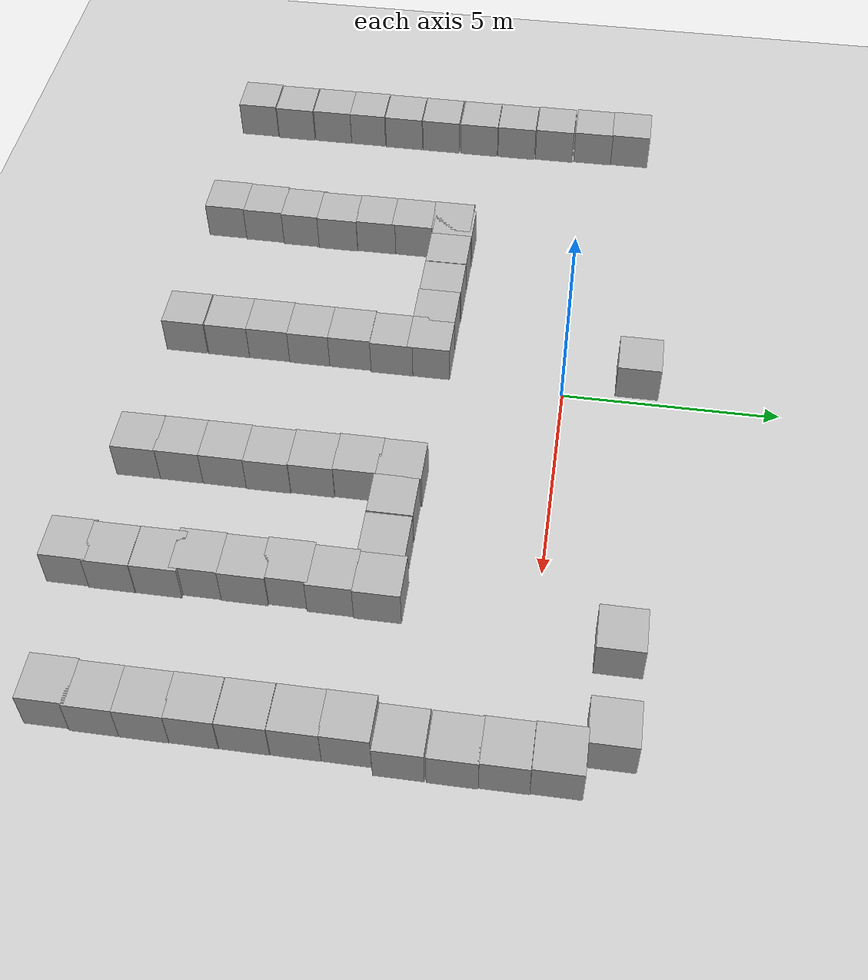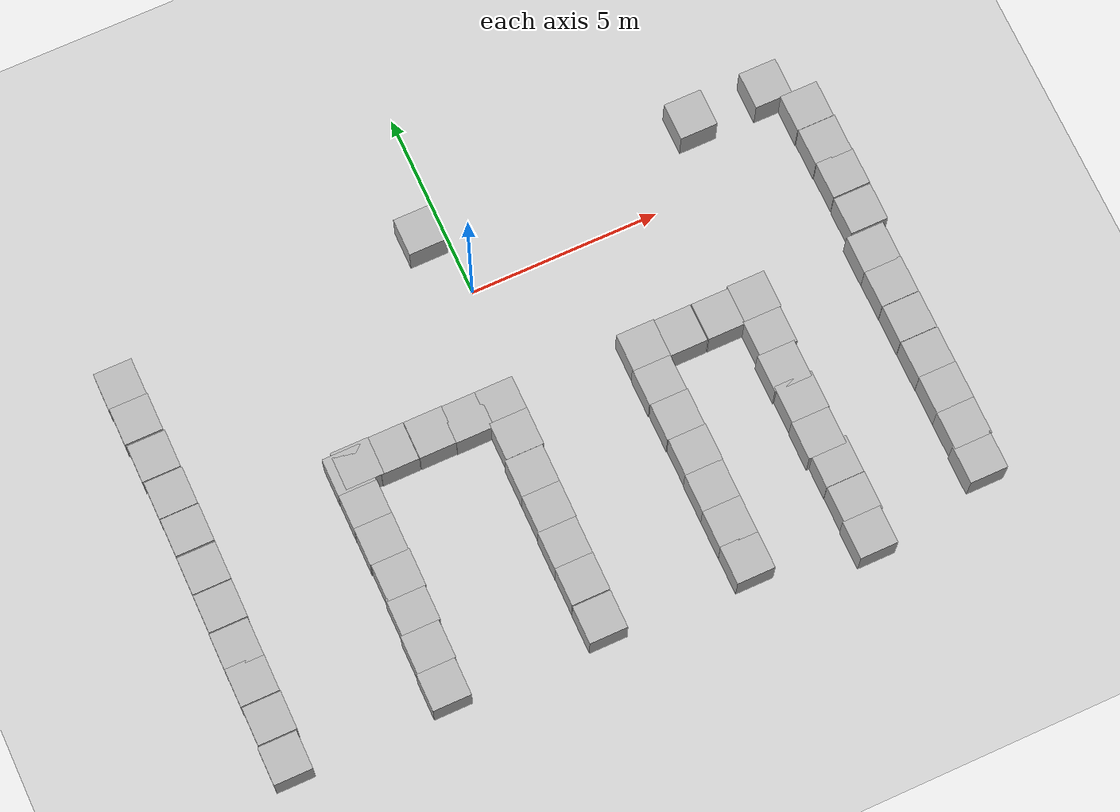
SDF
<sdf version="1.9">
 <world name="empty">
  <model name="ground_plane">
   <static>true</static>
   <link name="link">
    <collision name="collision">
     <geometry><plane><normal>0 0 1</normal><size>100 100</size></plane></geometry>
    </collision>
    <visual name="visual">
     <geometry><plane><normal>0 0 1</normal><size>100 100</size></plane></geometry>
     <material>
      <ambient>0.8 0.8 0.8 1</ambient>
      <diffuse>0.8 0.8 0.8 1</diffuse>
      <specular>0.8 0.8 0.8 1</specular>
     </material>
    </visual>
    <inertial>
     <mass>1</mass>
     <inertia><ixx>1</ixx><ixy>0</ixy><ixz>0</ixz><iyy>1</iyy><iyz>0</iyz><izz>1</izz></inertia>
    </inertial>
   </link>
  </model>
  <model name="box">
   <pose>-0.628622 -3.17576 0.5 0 -0 0</pose>
   <link name="box_link">
    <inertial>
     <inertia><ixx>0.16666</ixx><ixy>0</ixy><ixz>0</ixz><iyy>0.16666</iyy><iyz>0</iyz><izz>0.16666</izz></inertia>
     <mass>1</mass>
    </inertial>
    <collision name="box_collision"><geometry><box><size>1 1 1</size></box></geometry></collision>
    <visual name="box_visual">
     <geometry><box><size>1 1 1</size></box></geometry>
     <material>
      <ambient>0.3 0.3 0.3 1</ambient>
      <diffuse>0.7 0.7 0.7 1</diffuse>
      <specular>1 1 1 1</specular>
     </material>
    </visual>
   </link>
   <static>false</static>
  </model>
  <model name="box_0">
   <pose>-1.54573 -3.17539 0.5 0 -0 0</pose>
   <link name="box_link">
    <inertial>
     <inertia><ixx>0.16666</ixx><ixy>0</ixy><ixz>0</ixz><iyy>0.16666</iyy><iyz>0</iyz><izz>0.16666</izz></inertia>
     <mass>1</mass>
    </inertial>
    <collision name="box_collision"><geometry><box><size>1 1 1</size></box></geometry></collision>
    <visual name="box_visual">
     <geometry><box><size>1 1 1</size></box></geometry>
     <material>
      <ambient>0.3 0.3 0.3 1</ambient>
      <diffuse>0.7 0.7 0.7 1</diffuse>
      <specular>1 1 1 1</specular>
     </material>
    </visual>
   </link>
   <static>false</static>
  </model>
  <model name="box_1">
   <pose>-2.50675 -3.16277 0.5 0 -0 0</pose>
   <link name="box_link">
    <inertial>
     <inertia><ixx>0.16666</ixx><ixy>0</ixy><ixz>0</ixz><iyy>0.16666</iyy><iyz>0</iyz><izz>0.16666</izz></inertia>
     <mass>1</mass>
    </inertial>
    <collision name="box_collision"><geometry><box><size>1 1 1</size></box></geometry></collision>
    <visual name="box_visual">
     <geometry><box><size>1 1 1</size></box></geometry>
     <material>
      <ambient>0.3 0.3 0.3 1</ambient>
      <diffuse>0.7 0.7 0.7 1</diffuse>
      <specular>1 1 1 1</specular>
     </material>
    </visual>
   </link>
   <static>false</static>
  </model>
  <model name="box_2">
   <pose>-3.51964 -3.15896 0.5 0 -0 0</pose>
   <link name="box_link">
    <inertial>
     <inertia><ixx>0.16666</ixx><ixy>0</ixy><ixz>0</ixz><iyy>0.16666</iyy><iyz>0</iyz><izz>0.16666</izz></inertia>
     <mass>1</mass>
    </inertial>
    <collision name="box_collision"><geometry><box><size>1 1 1</size></box></geometry></collision>
    <visual name="box_visual">
     <geometry><box><size>1 1 1</size></box></geometry>
     <material>
      <ambient>0.3 0.3 0.3 1</ambient>
      <diffuse>0.7 0.7 0.7 1</diffuse>
      <specular>1 1 1 1</specular>
     </material>
    </visual>
   </link>
   <static>false</static>
  </model>
  <model name="box_3">
   <pose>-4.44088 -3.14907 0.5 0 -0 0</pose>
   <link name="box_link">
    <inertial>
     <inertia><ixx>0.16666</ixx><ixy>0</ixy><ixz>0</ixz><iyy>0.16666</iyy><iyz>0</iyz><izz>0.16666</izz></inertia>
     <mass>1</mass>
    </inertial>
    <collision name="box_collision"><geometry><box><size>1 1 1</size></box></geometry></collision>
    <visual name="box_visual">
     <geometry><box><size>1 1 1</size></box></geometry>
     <material>
      <ambient>0.3 0.3 0.3 1</ambient>
      <diffuse>0.7 0.7 0.7 1</diffuse>
      <specular>1 1 1 1</specular>
     </material>
    </visual>
   </link>
   <static>false</static>
  </model>
  <model name="box_7">
   <pose>-0.640154 1.71751 0.5 0 -0 0</pose>
   <link name="box_link">
    <inertial>
     <inertia><ixx>0.16666</ixx><ixy>0</ixy><ixz>0</ixz><iyy>0.16666</iyy><iyz>0</iyz><izz>0.16666</izz></inertia>
     <mass>1</mass>
    </inertial>
    <collision name="box_collision"><geometry><box><size>1 1 1</size></box></geometry></collision>
    <visual name="box_visual">
     <geometry><box><size>1 1 1</size></box></geometry>
     <material>
      <ambient>0.3 0.3 0.3 1</ambient>
      <diffuse>0.7 0.7 0.7 1</diffuse>
      <specular>1 1 1 1</specular>
     </material>
    </visual>
   </link>
   <static>false</static>
  </model>
  <model name="box_8">
   <pose>-0.624925 -4.05306 0.5 0 -0 0</pose>
   <link name="box_link">
    <inertial>
     <inertia><ixx>0.16666</ixx><ixy>0</ixy><ixz>0</ixz><iyy>0.16666</iyy><iyz>0</iyz><izz>0.16666</izz></inertia>
     <mass>1</mass>
    </inertial>
    <collision name="box_collision"><geometry><box><size>1 1 1</size></box></geometry></collision>
    <visual name="box_visual">
     <geometry><box><size>1 1 1</size></box></geometry>
     <material>
      <ambient>0.3 0.3 0.3 1</ambient>
      <diffuse>0.7 0.7 0.7 1</diffuse>
      <specular>1 1 1 1</specular>
     </material>
    </visual>
   </link>
   <static>false</static>
  </model>
  <model name="box_9">
   <pose>-0.666125 -5.05588 0.5 0 -0 0</pose>
   <link name="box_link">
    <inertial>
     <inertia><ixx>0.16666</ixx><ixy>0</ixy><ixz>0</ixz><iyy>0.16666</iyy><iyz>0</iyz><izz>0.16666</izz></inertia>
     <mass>1</mass>
    </inertial>
    <collision name="box_collision"><geometry><box><size>1 1 1</size></box></geometry></collision>
    <visual name="box_visual">
     <geometry><box><size>1 1 1</size></box></geometry>
     <material>
      <ambient>0.3 0.3 0.3 1</ambient>
      <diffuse>0.7 0.7 0.7 1</diffuse>
      <specular>1 1 1 1</specular>
     </material>
    </visual>
   </link>
   <static>false</static>
  </model>
  <model name="box_10">
   <pose>-0.666125 -6.02587 0.5 0 -0 0</pose>
   <link name="box_link">
    <inertial>
     <inertia><ixx>0.16666</ixx><ixy>0</ixy><ixz>0</ixz><iyy>0.16666</iyy><iyz>0</iyz><izz>0.16666</izz></inertia>
     <mass>1</mass>
    </inertial>
    <collision name="box_collision"><geometry><box><size>1 1 1</size></box></geometry></collision>
    <visual name="box_visual">
     <geometry><box><size>1 1 1</size></box></geometry>
     <material>
      <ambient>0.3 0.3 0.3 1</ambient>
      <diffuse>0.7 0.7 0.7 1</diffuse>
      <specular>1 1 1 1</specular>
     </material>
    </visual>
   </link>
   <static>false</static>
  </model>
  <model name="box_11">
   <pose>-0.682233 -7.0253 0.5 0 -0 0</pose>
   <link name="box_link">
    <inertial>
     <inertia><ixx>0.16666</ixx><ixy>0</ixy><ixz>0</ixz><iyy>0.16666</iyy><iyz>0</iyz><izz>0.16666</izz></inertia>
     <mass>1</mass>
    </inertial>
    <collision name="box_collision"><geometry><box><size>1 1 1</size></box></geometry></collision>
    <visual name="box_visual">
     <geometry><box><size>1 1 1</size></box></geometry>
     <material>
      <ambient>0.3 0.3 0.3 1</ambient>
      <diffuse>0.7 0.7 0.7 1</diffuse>
      <specular>1 1 1 1</specular>
     </material>
    </visual>
   </link>
   <static>false</static>
  </model>
  <model name="box_12">
   <pose>-0.678292 -8.00642 0.500001 0 -0 0</pose>
   <link name="box_link">
    <inertial>
     <inertia><ixx>0.16666</ixx><ixy>0</ixy><ixz>0</ixz><iyy>0.16666</iyy><iyz>0</iyz><izz>0.16666</izz></inertia>
     <mass>1</mass>
    </inertial>
    <collision name="box_collision"><geometry><box><size>1 1 1</size></box></geometry></collision>
    <visual name="box_visual">
     <geometry><box><size>1 1 1</size></box></geometry>
     <material>
      <ambient>0.3 0.3 0.3 1</ambient>
      <diffuse>0.7 0.7 0.7 1</diffuse>
      <specular>1 1 1 1</specular>
     </material>
    </visual>
   </link>
   <static>false</static>
  </model>
  <model name="box_13">
   <pose>-0.682523 -9.03062 0.5 0 -0 0</pose>
   <link name="box_link">
    <inertial>
     <inertia><ixx>0.16666</ixx><ixy>0</ixy><ixz>0</ixz><iyy>0.16666</iyy><iyz>0</iyz><izz>0.16666</izz></inertia>
     <mass>1</mass>
    </inertial>
    <collision name="box_collision"><geometry><box><size>1 1 1</size></box></geometry></collision>
    <visual name="box_visual">
     <geometry><box><size>1 1 1</size></box></geometry>
     <material>
      <ambient>0.3 0.3 0.3 1</ambient>
      <diffuse>0.7 0.7 0.7 1</diffuse>
      <specular>1 1 1 1</specular>
     </material>
    </visual>
   </link>
   <static>false</static>
  </model>
  <model name="box_20">
   <pose>3.11918 -3.27527 0.5 0 -0 0</pose>
   <link name="box_link">
    <inertial>
     <inertia><ixx>0.16666</ixx><ixy>0</ixy><ixz>0</ixz><iyy>0.16666</iyy><iyz>0</iyz><izz>0.16666</izz></inertia>
     <mass>1</mass>
    </inertial>
    <collision name="box_collision"><geometry><box><size>1 1 1</size></box></geometry></collision>
    <visual name="box_visual">
     <geometry><box><size>1 1 1</size></box></geometry>
     <material>
      <ambient>0.3 0.3 0.3 1</ambient>
      <diffuse>0.7 0.7 0.7 1</diffuse>
      <specular>1 1 1 1</specular>
     </material>
    </visual>
   </link>
   <static>false</static>
  </model>
  <model name="box_21">
   <pose>3.10814 -4.22657 0.5 0 -0 0</pose>
   <link name="box_link">
    <inertial>
     <inertia><ixx>0.16666</ixx><ixy>0</ixy><ixz>0</ixz><iyy>0.16666</iyy><iyz>0</iyz><izz>0.16666</izz></inertia>
     <mass>1</mass>
    </inertial>
    <collision name="box_collision"><geometry><box><size>1 1 1</size></box></geometry></collision>
    <visual name="box_visual">
     <geometry><box><size>1 1 1</size></box></geometry>
     <material>
      <ambient>0.3 0.3 0.3 1</ambient>
      <diffuse>0.7 0.7 0.7 1</diffuse>
      <specular>1 1 1 1</specular>
     </material>
    </visual>
   </link>
   <static>false</static>
  </model>
  <model name="box_22">
   <pose>3.12982 -5.21504 0.5 0 -0 0</pose>
   <link name="box_link">
    <inertial>
     <inertia><ixx>0.16666</ixx><ixy>0</ixy><ixz>0</ixz><iyy>0.16666</iyy><iyz>0</iyz><izz>0.16666</izz></inertia>
     <mass>1</mass>
    </inertial>
    <collision name="box_collision"><geometry><box><size>1 1 1</size></box></geometry></collision>
    <visual name="box_visual">
     <geometry><box><size>1 1 1</size></box></geometry>
     <material>
      <ambient>0.3 0.3 0.3 1</ambient>
      <diffuse>0.7 0.7 0.7 1</diffuse>
      <specular>1 1 1 1</specular>
     </material>
    </visual>
   </link>
   <static>false</static>
  </model>
  <model name="box_23">
   <pose>3.15098 -6.19862 0.5 0 -0 0</pose>
   <link name="box_link">
    <inertial>
     <inertia><ixx>0.16666</ixx><ixy>0</ixy><ixz>0</ixz><iyy>0.16666</iyy><iyz>0</iyz><izz>0.16666</izz></inertia>
     <mass>1</mass>
    </inertial>
    <collision name="box_collision"><geometry><box><size>1 1 1</size></box></geometry></collision>
    <visual name="box_visual">
     <geometry><box><size>1 1 1</size></box></geometry>
     <material>
      <ambient>0.3 0.3 0.3 1</ambient>
      <diffuse>0.7 0.7 0.7 1</diffuse>
      <specular>1 1 1 1</specular>
     </material>
    </visual>
   </link>
   <static>false</static>
  </model>
  <model name="box_24">
   <pose>3.13753 -7.18844 0.5 0 -0 0</pose>
   <link name="box_link">
    <inertial>
     <inertia><ixx>0.16666</ixx><ixy>0</ixy><ixz>0</ixz><iyy>0.16666</iyy><iyz>0</iyz><izz>0.16666</izz></inertia>
     <mass>1</mass>
    </inertial>
    <collision name="box_collision"><geometry><box><size>1 1 1</size></box></geometry></collision>
    <visual name="box_visual">
     <geometry><box><size>1 1 1</size></box></geometry>
     <material>
      <ambient>0.3 0.3 0.3 1</ambient>
      <diffuse>0.7 0.7 0.7 1</diffuse>
      <specular>1 1 1 1</specular>
     </material>
    </visual>
   </link>
   <static>false</static>
  </model>
  <model name="box_25">
   <pose>3.13773 -8.18491 0.5 0 -0 0</pose>
   <link name="box_link">
    <inertial>
     <inertia><ixx>0.16666</ixx><ixy>0</ixy><ixz>0</ixz><iyy>0.16666</iyy><iyz>0</iyz><izz>0.16666</izz></inertia>
     <mass>1</mass>
    </inertial>
    <collision name="box_collision"><geometry><box><size>1 1 1</size></box></geometry></collision>
    <visual name="box_visual">
     <geometry><box><size>1 1 1</size></box></geometry>
     <material>
      <ambient>0.3 0.3 0.3 1</ambient>
      <diffuse>0.7 0.7 0.7 1</diffuse>
      <specular>1 1 1 1</specular>
     </material>
    </visual>
   </link>
   <static>false</static>
  </model>
  <model name="box_26">
   <pose>3.14306 -9.15602 0.5 0 -0 0</pose>
   <link name="box_link">
    <inertial>
     <inertia><ixx>0.16666</ixx><ixy>0</ixy><ixz>0</ixz><iyy>0.16666</iyy><iyz>0</iyz><izz>0.16666</izz></inertia>
     <mass>1</mass>
    </inertial>
    <collision name="box_collision"><geometry><box><size>1 1 1</size></box></geometry></collision>
    <visual name="box_visual">
     <geometry><box><size>1 1 1</size></box></geometry>
     <material>
      <ambient>0.3 0.3 0.3 1</ambient>
      <diffuse>0.7 0.7 0.7 1</diffuse>
      <specular>1 1 1 1</specular>
     </material>
    </visual>
   </link>
   <static>false</static>
  </model>
  <model name="box_36">
   <pose>4.10268 -3.30615 0.5 0 -0 0</pose>
   <link name="box_link">
    <inertial>
     <inertia><ixx>0.16666</ixx><ixy>0</ixy><ixz>0</ixz><iyy>0.16666</iyy><iyz>0</iyz><izz>0.16666</izz></inertia>
     <mass>1</mass>
    </inertial>
    <collision name="box_collision"><geometry><box><size>1 1 1</size></box></geometry></collision>
    <visual name="box_visual">
     <geometry><box><size>1 1 1</size></box></geometry>
     <material>
      <ambient>0.3 0.3 0.3 1</ambient>
      <diffuse>0.7 0.7 0.7 1</diffuse>
      <specular>1 1 1 1</specular>
     </material>
    </visual>
   </link>
   <static>false</static>
  </model>
  <model name="box_37">
   <pose>5.12914 -3.30697 0.5 0 -0 0</pose>
   <link name="box_link">
    <inertial>
     <inertia><ixx>0.16666</ixx><ixy>0</ixy><ixz>0</ixz><iyy>0.16666</iyy><iyz>0</iyz><izz>0.16666</izz></inertia>
     <mass>1</mass>
    </inertial>
    <collision name="box_collision"><geometry><box><size>1 1 1</size></box></geometry></collision>
    <visual name="box_visual">
     <geometry><box><size>1 1 1</size></box></geometry>
     <material>
      <ambient>0.3 0.3 0.3 1</ambient>
      <diffuse>0.7 0.7 0.7 1</diffuse>
      <specular>1 1 1 1</specular>
     </material>
    </visual>
   </link>
   <static>false</static>
  </model>
  <model name="box_38">
   <pose>6.11725 -3.25256 0.5 0 -0 0</pose>
   <link name="box_link">
    <inertial>
     <inertia><ixx>0.16666</ixx><ixy>0</ixy><ixz>0</ixz><iyy>0.16666</iyy><iyz>0</iyz><izz>0.16666</izz></inertia>
     <mass>1</mass>
    </inertial>
    <collision name="box_collision"><geometry><box><size>1 1 1</size></box></geometry></collision>
    <visual name="box_visual">
     <geometry><box><size>1 1 1</size></box></geometry>
     <material>
      <ambient>0.3 0.3 0.3 1</ambient>
      <diffuse>0.7 0.7 0.7 1</diffuse>
      <specular>1 1 1 1</specular>
     </material>
    </visual>
   </link>
   <static>false</static>
  </model>
  <model name="box_39">
   <pose>6.08814 -4.23526 0.5 0 -0 0</pose>
   <link name="box_link">
    <inertial>
     <inertia><ixx>0.16666</ixx><ixy>0</ixy><ixz>0</ixz><iyy>0.16666</iyy><iyz>0</iyz><izz>0.16666</izz></inertia>
     <mass>1</mass>
    </inertial>
    <collision name="box_collision"><geometry><box><size>1 1 1</size></box></geometry></collision>
    <visual name="box_visual">
     <geometry><box><size>1 1 1</size></box></geometry>
     <material>
      <ambient>0.3 0.3 0.3 1</ambient>
      <diffuse>0.7 0.7 0.7 1</diffuse>
      <specular>1 1 1 1</specular>
     </material>
    </visual>
   </link>
   <static>false</static>
  </model>
  <model name="box_40">
   <pose>9.34735 -3.31674 0.5 0 -0 0</pose>
   <link name="box_link">
    <inertial>
     <inertia><ixx>0.16666</ixx><ixy>0</ixy><ixz>0</ixz><iyy>0.16666</iyy><iyz>0</iyz><izz>0.16666</izz></inertia>
     <mass>1</mass>
    </inertial>
    <collision name="box_collision"><geometry><box><size>1 1 1</size></box></geometry></collision>
    <visual name="box_visual">
     <geometry><box><size>1 1 1</size></box></geometry>
     <material>
      <ambient>0.3 0.3 0.3 1</ambient>
      <diffuse>0.7 0.7 0.7 1</diffuse>
      <specular>1 1 1 1</specular>
     </material>
    </visual>
   </link>
   <static>false</static>
  </model>
  <model name="box_41">
   <pose>6.02668 -5.18071 0.5 0 -0 0</pose>
   <link name="box_link">
    <inertial>
     <inertia><ixx>0.16666</ixx><ixy>0</ixy><ixz>0</ixz><iyy>0.16666</iyy><iyz>0</iyz><izz>0.16666</izz></inertia>
     <mass>1</mass>
    </inertial>
    <collision name="box_collision"><geometry><box><size>1 1 1</size></box></geometry></collision>
    <visual name="box_visual">
     <geometry><box><size>1 1 1</size></box></geometry>
     <material>
      <ambient>0.3 0.3 0.3 1</ambient>
      <diffuse>0.7 0.7 0.7 1</diffuse>
      <specular>1 1 1 1</specular>
     </material>
    </visual>
   </link>
   <static>false</static>
  </model>
  <model name="box_42">
   <pose>6.06456 -6.05794 0.5 0 -0 0</pose>
   <link name="box_link">
    <inertial>
     <inertia><ixx>0.16666</ixx><ixy>0</ixy><ixz>0</ixz><iyy>0.16666</iyy><iyz>0</iyz><izz>0.16666</izz></inertia>
     <mass>1</mass>
    </inertial>
    <collision name="box_collision"><geometry><box><size>1 1 1</size></box></geometry></collision>
    <visual name="box_visual">
     <geometry><box><size>1 1 1</size></box></geometry>
     <material>
      <ambient>0.3 0.3 0.3 1</ambient>
      <diffuse>0.7 0.7 0.7 1</diffuse>
      <specular>1 1 1 1</specular>
     </material>
    </visual>
   </link>
   <static>false</static>
  </model>
  <model name="box_43">
   <pose>9.35294 -4.29522 0.5 0 -0 0</pose>
   <link name="box_link">
    <inertial>
     <inertia><ixx>0.16666</ixx><ixy>0</ixy><ixz>0</ixz><iyy>0.16666</iyy><iyz>0</iyz><izz>0.16666</izz></inertia>
     <mass>1</mass>
    </inertial>
    <collision name="box_collision"><geometry><box><size>1 1 1</size></box></geometry></collision>
    <visual name="box_visual">
     <geometry><box><size>1 1 1</size></box></geometry>
     <material>
      <ambient>0.3 0.3 0.3 1</ambient>
      <diffuse>0.7 0.7 0.7 1</diffuse>
      <specular>1 1 1 1</specular>
     </material>
    </visual>
   </link>
   <static>false</static>
  </model>
  <model name="box_44">
   <pose>9.35811 -5.30489 0.5 0 -0 0</pose>
   <link name="box_link">
    <inertial>
     <inertia><ixx>0.16666</ixx><ixy>0</ixy><ixz>0</ixz><iyy>0.16666</iyy><iyz>0</iyz><izz>0.16666</izz></inertia>
     <mass>1</mass>
    </inertial>
    <collision name="box_collision"><geometry><box><size>1 1 1</size></box></geometry></collision>
    <visual name="box_visual">
     <geometry><box><size>1 1 1</size></box></geometry>
     <material>
      <ambient>0.3 0.3 0.3 1</ambient>
      <diffuse>0.7 0.7 0.7 1</diffuse>
      <specular>1 1 1 1</specular>
     </material>
    </visual>
   </link>
   <static>false</static>
  </model>
  <model name="box_45">
   <pose>9.3637 -6.31467 0.5 0 -0 0</pose>
   <link name="box_link">
    <inertial>
     <inertia><ixx>0.16666</ixx><ixy>0</ixy><ixz>0</ixz><iyy>0.16666</iyy><iyz>0</iyz><izz>0.16666</izz></inertia>
     <mass>1</mass>
    </inertial>
    <collision name="box_collision"><geometry><box><size>1 1 1</size></box></geometry></collision>
    <visual name="box_visual">
     <geometry><box><size>1 1 1</size></box></geometry>
     <material>
      <ambient>0.3 0.3 0.3 1</ambient>
      <diffuse>0.7 0.7 0.7 1</diffuse>
      <specular>1 1 1 1</specular>
     </material>
    </visual>
   </link>
   <static>false</static>
  </model>
  <model name="box_46">
   <pose>6.0468 -7.05577 0.5 0 -0 0</pose>
   <link name="box_link">
    <inertial>
     <inertia><ixx>0.16666</ixx><ixy>0</ixy><ixz>0</ixz><iyy>0.16666</iyy><iyz>0</iyz><izz>0.16666</izz></inertia>
     <mass>1</mass>
    </inertial>
    <collision name="box_collision"><geometry><box><size>1 1 1</size></box></geometry></collision>
    <visual name="box_visual">
     <geometry><box><size>1 1 1</size></box></geometry>
     <material>
      <ambient>0.3 0.3 0.3 1</ambient>
      <diffuse>0.7 0.7 0.7 1</diffuse>
      <specular>1 1 1 1</specular>
     </material>
    </visual>
   </link>
   <static>false</static>
  </model>
  <model name="box_47">
   <pose>6.11985 -7.88024 0.5 0 -0 0</pose>
   <link name="box_link">
    <inertial>
     <inertia><ixx>0.16666</ixx><ixy>0</ixy><ixz>0</ixz><iyy>0.16666</iyy><iyz>0</iyz><izz>0.16666</izz></inertia>
     <mass>1</mass>
    </inertial>
    <collision name="box_collision"><geometry><box><size>1 1 1</size></box></geometry></collision>
    <visual name="box_visual">
     <geometry><box><size>1 1 1</size></box></geometry>
     <material>
      <ambient>0.3 0.3 0.3 1</ambient>
      <diffuse>0.7 0.7 0.7 1</diffuse>
      <specular>1 1 1 1</specular>
     </material>
    </visual>
   </link>
   <static>false</static>
  </model>
  <model name="box_48">
   <pose>6.12415 -8.88808 0.5 0 -0 0</pose>
   <link name="box_link">
    <inertial>
     <inertia><ixx>0.16666</ixx><ixy>0</ixy><ixz>0</ixz><iyy>0.16666</iyy><iyz>0</iyz><izz>0.16666</izz></inertia>
     <mass>1</mass>
    </inertial>
    <collision name="box_collision"><geometry><box><size>1 1 1</size></box></geometry></collision>
    <visual name="box_visual">
     <geometry><box><size>1 1 1</size></box></geometry>
     <material>
      <ambient>0.3 0.3 0.3 1</ambient>
      <diffuse>0.7 0.7 0.7 1</diffuse>
      <specular>1 1 1 1</specular>
     </material>
    </visual>
   </link>
   <static>false</static>
  </model>
  <model name="box_49">
   <pose>9.37141 -7.29127 0.5 0 -0 0</pose>
   <link name="box_link">
    <inertial>
     <inertia><ixx>0.16666</ixx><ixy>0</ixy><ixz>0</ixz><iyy>0.16666</iyy><iyz>0</iyz><izz>0.16666</izz></inertia>
     <mass>1</mass>
    </inertial>
    <collision name="box_collision"><geometry><box><size>1 1 1</size></box></geometry></collision>
    <visual name="box_visual">
     <geometry><box><size>1 1 1</size></box></geometry>
     <material>
      <ambient>0.3 0.3 0.3 1</ambient>
      <diffuse>0.7 0.7 0.7 1</diffuse>
      <specular>1 1 1 1</specular>
     </material>
    </visual>
   </link>
   <static>false</static>
  </model>
  <model name="box_50">
   <pose>9.36911 -8.28592 0.5 0 -0 0</pose>
   <link name="box_link">
    <inertial>
     <inertia><ixx>0.16666</ixx><ixy>0</ixy><ixz>0</ixz><iyy>0.16666</iyy><iyz>0</iyz><izz>0.16666</izz></inertia>
     <mass>1</mass>
    </inertial>
    <collision name="box_collision"><geometry><box><size>1 1 1</size></box></geometry></collision>
    <visual name="box_visual">
     <geometry><box><size>1 1 1</size></box></geometry>
     <material>
      <ambient>0.3 0.3 0.3 1</ambient>
      <diffuse>0.7 0.7 0.7 1</diffuse>
      <specular>1 1 1 1</specular>
     </material>
    </visual>
   </link>
   <static>false</static>
  </model>
  <model name="box_51">
   <pose>9.33438 -9.21361 0.5 0 -0 0</pose>
   <link name="box_link">
    <inertial>
     <inertia><ixx>0.16666</ixx><ixy>0</ixy><ixz>0</ixz><iyy>0.16666</iyy><iyz>0</iyz><izz>0.16666</izz></inertia>
     <mass>1</mass>
    </inertial>
    <collision name="box_collision"><geometry><box><size>1 1 1</size></box></geometry></collision>
    <visual name="box_visual">
     <geometry><box><size>1 1 1</size></box></geometry>
     <material>
      <ambient>0.3 0.3 0.3 1</ambient>
      <diffuse>0.7 0.7 0.7 1</diffuse>
      <specular>1 1 1 1</specular>
     </material>
    </visual>
   </link>
   <static>false</static>
  </model>
  <model name="box_52">
   <pose>6.09605 -9.80963 0.5 0 -0 0</pose>
   <link name="box_link">
    <inertial>
     <inertia><ixx>0.16666</ixx><ixy>0</ixy><ixz>0</ixz><iyy>0.16666</iyy><iyz>0</iyz><izz>0.16666</izz></inertia>
     <mass>1</mass>
    </inertial>
    <collision name="box_collision"><geometry><box><size>1 1 1</size></box></geometry></collision>
    <visual name="box_visual">
     <geometry><box><size>1 1 1</size></box></geometry>
     <material>
      <ambient>0.3 0.3 0.3 1</ambient>
      <diffuse>0.7 0.7 0.7 1</diffuse>
      <specular>1 1 1 1</specular>
     </material>
    </visual>
   </link>
   <static>false</static>
  </model>
  <model name="box_56">
   <pose>6.7339 1.72644 0.5 0 -0 0</pose>
   <link name="box_link">
    <inertial>
     <inertia><ixx>0.16666</ixx><ixy>0</ixy><ixz>0</ixz><iyy>0.16666</iyy><iyz>0</iyz><izz>0.16666</izz></inertia>
     <mass>1</mass>
    </inertial>
    <collision name="box_collision"><geometry><box><size>1 1 1</size></box></geometry></collision>
    <visual name="box_visual">
     <geometry><box><size>1 1 1</size></box></geometry>
     <material>
      <ambient>0.3 0.3 0.3 1</ambient>
      <diffuse>0.7 0.7 0.7 1</diffuse>
      <specular>1 1 1 1</specular>
     </material>
    </visual>
   </link>
   <static>false</static>
  </model>
  <model name="box_58">
   <pose>8.79181 1.70761 0.5 0 -0 0</pose>
   <link name="box_link">
    <inertial>
     <inertia><ixx>0.16666</ixx><ixy>0</ixy><ixz>0</ixz><iyy>0.16666</iyy><iyz>0</iyz><izz>0.16666</izz></inertia>
     <mass>1</mass>
    </inertial>
    <collision name="box_collision"><geometry><box><size>1 1 1</size></box></geometry></collision>
    <visual name="box_visual">
     <geometry><box><size>1 1 1</size></box></geometry>
     <material>
      <ambient>0.3 0.3 0.3 1</ambient>
      <diffuse>0.7 0.7 0.7 1</diffuse>
      <specular>1 1 1 1</specular>
     </material>
    </visual>
   </link>
   <static>false</static>
  </model>
  <model name="box_59">
   <pose>9.47232 0.73234 0.5 0 -0 0</pose>
   <link name="box_link">
    <inertial>
     <inertia><ixx>0.16666</ixx><ixy>0</ixy><ixz>0</ixz><iyy>0.16666</iyy><iyz>0</iyz><izz>0.16666</izz></inertia>
     <mass>1</mass>
    </inertial>
    <collision name="box_collision"><geometry><box><size>1 1 1</size></box></geometry></collision>
    <visual name="box_visual">
     <geometry><box><size>1 1 1</size></box></geometry>
     <material>
      <ambient>0.3 0.3 0.3 1</ambient>
      <diffuse>0.7 0.7 0.7 1</diffuse>
      <specular>1 1 1 1</specular>
     </material>
    </visual>
   </link>
   <static>false</static>
  </model>
  <model name="box_60">
   <pose>9.49129 -0.27314 0.5 0 -0 0</pose>
   <link name="box_link">
    <inertial>
     <inertia><ixx>0.16666</ixx><ixy>0</ixy><ixz>0</ixz><iyy>0.16666</iyy><iyz>0</iyz><izz>0.16666</izz></inertia>
     <mass>1</mass>
    </inertial>
    <collision name="box_collision"><geometry><box><size>1 1 1</size></box></geometry></collision>
    <visual name="box_visual">
     <geometry><box><size>1 1 1</size></box></geometry>
     <material>
      <ambient>0.3 0.3 0.3 1</ambient>
      <diffuse>0.7 0.7 0.7 1</diffuse>
      <specular>1 1 1 1</specular>
     </material>
    </visual>
   </link>
   <static>false</static>
  </model>
  <model name="box_61">
   <pose>9.51034 -1.24295 0.5 0 -0 0</pose>
   <link name="box_link">
    <inertial>
     <inertia><ixx>0.16666</ixx><ixy>0</ixy><ixz>0</ixz><iyy>0.16666</iyy><iyz>0</iyz><izz>0.16666</izz></inertia>
     <mass>1</mass>
    </inertial>
    <collision name="box_collision"><geometry><box><size>1 1 1</size></box></geometry></collision>
    <visual name="box_visual">
     <geometry><box><size>1 1 1</size></box></geometry>
     <material>
      <ambient>0.3 0.3 0.3 1</ambient>
      <diffuse>0.7 0.7 0.7 1</diffuse>
      <specular>1 1 1 1</specular>
     </material>
    </visual>
   </link>
   <static>false</static>
  </model>
  <model name="box_62">
   <pose>9.50221 -2.2745 0.5 0 -0 0</pose>
   <link name="box_link">
    <inertial>
     <inertia><ixx>0.16666</ixx><ixy>0</ixy><ixz>0</ixz><iyy>0.16666</iyy><iyz>0</iyz><izz>0.16666</izz></inertia>
     <mass>1</mass>
    </inertial>
    <collision name="box_collision"><geometry><box><size>1 1 1</size></box></geometry></collision>
    <visual name="box_visual">
     <geometry><box><size>1 1 1</size></box></geometry>
     <material>
      <ambient>0.3 0.3 0.3 1</ambient>
      <diffuse>0.7 0.7 0.7 1</diffuse>
      <specular>1 1 1 1</specular>
     </material>
    </visual>
   </link>
   <static>false</static>
  </model>
  <model name="box_75">
   <pose>-4.67107 -4.18888 0.5 0 -0 0</pose>
   <link name="box_link">
    <inertial>
     <inertia><ixx>0.16666</ixx><ixy>0</ixy><ixz>0</ixz><iyy>0.16666</iyy><iyz>0</iyz><izz>0.16666</izz></inertia>
     <mass>1</mass>
    </inertial>
    <collision name="box_collision"><geometry><box><size>1 1 1</size></box></geometry></collision>
    <visual name="box_visual">
     <geometry><box><size>1 1 1</size></box></geometry>
     <material>
      <ambient>0.3 0.3 0.3 1</ambient>
      <diffuse>0.7 0.7 0.7 1</diffuse>
      <specular>1 1 1 1</specular>
     </material>
    </visual>
   </link>
   <static>false</static>
  </model>
  <model name="box_76">
   <pose>-4.66454 -5.11287 0.5 0 -0 0</pose>
   <link name="box_link">
    <inertial>
     <inertia><ixx>0.16666</ixx><ixy>0</ixy><ixz>0</ixz><iyy>0.16666</iyy><iyz>0</iyz><izz>0.16666</izz></inertia>
     <mass>1</mass>
    </inertial>
    <collision name="box_collision"><geometry><box><size>1 1 1</size></box></geometry></collision>
    <visual name="box_visual">
     <geometry><box><size>1 1 1</size></box></geometry>
     <material>
      <ambient>0.3 0.3 0.3 1</ambient>
      <diffuse>0.7 0.7 0.7 1</diffuse>
      <specular>1 1 1 1</specular>
     </material>
    </visual>
   </link>
   <static>false</static>
  </model>
  <model name="box_77">
   <pose>-4.64106 -6.09662 0.5 0 -0 0</pose>
   <link name="box_link">
    <inertial>
     <inertia><ixx>0.16666</ixx><ixy>0</ixy><ixz>0</ixz><iyy>0.16666</iyy><iyz>0</iyz><izz>0.16666</izz></inertia>
     <mass>1</mass>
    </inertial>
    <collision name="box_collision"><geometry><box><size>1 1 1</size></box></geometry></collision>
    <visual name="box_visual">
     <geometry><box><size>1 1 1</size></box></geometry>
     <material>
      <ambient>0.3 0.3 0.3 1</ambient>
      <diffuse>0.7 0.7 0.7 1</diffuse>
      <specular>1 1 1 1</specular>
     </material>
    </visual>
   </link>
   <static>false</static>
  </model>
  <model name="box_78">
   <pose>-4.6679 -7.01679 0.5 0 -0 0</pose>
   <link name="box_link">
    <inertial>
     <inertia><ixx>0.16666</ixx><ixy>0</ixy><ixz>0</ixz><iyy>0.16666</iyy><iyz>0</iyz><izz>0.16666</izz></inertia>
     <mass>1</mass>
    </inertial>
    <collision name="box_collision"><geometry><box><size>1 1 1</size></box></geometry></collision>
    <visual name="box_visual">
     <geometry><box><size>1 1 1</size></box></geometry>
     <material>
      <ambient>0.3 0.3 0.3 1</ambient>
      <diffuse>0.7 0.7 0.7 1</diffuse>
      <specular>1 1 1 1</specular>
     </material>
    </visual>
   </link>
   <static>false</static>
  </model>
  <model name="box_79">
   <pose>-4.70688 -8.00315 0.5 0 -0 0</pose>
   <link name="box_link">
    <inertial>
     <inertia><ixx>0.16666</ixx><ixy>0</ixy><ixz>0</ixz><iyy>0.16666</iyy><iyz>0</iyz><izz>0.16666</izz></inertia>
     <mass>1</mass>
    </inertial>
    <collision name="box_collision"><geometry><box><size>1 1 1</size></box></geometry></collision>
    <visual name="box_visual">
     <geometry><box><size>1 1 1</size></box></geometry>
     <material>
      <ambient>0.3 0.3 0.3 1</ambient>
      <diffuse>0.7 0.7 0.7 1</diffuse>
      <specular>1 1 1 1</specular>
     </material>
    </visual>
   </link>
   <static>false</static>
  </model>
  <model name="box_80">
   <pose>-4.73335 -8.98617 0.5 0 -0 0</pose>
   <link name="box_link">
    <inertial>
     <inertia><ixx>0.16666</ixx><ixy>0</ixy><ixz>0</ixz><iyy>0.16666</iyy><iyz>0</iyz><izz>0.16666</izz></inertia>
     <mass>1</mass>
    </inertial>
    <collision name="box_collision"><geometry><box><size>1 1 1</size></box></geometry></collision>
    <visual name="box_visual">
     <geometry><box><size>1 1 1</size></box></geometry>
     <material>
      <ambient>0.3 0.3 0.3 1</ambient>
      <diffuse>0.7 0.7 0.7 1</diffuse>
      <specular>1 1 1 1</specular>
     </material>
    </visual>
   </link>
   <static>false</static>
  </model>
  <model name="box_81">
   <pose>-8.81264 -2.98752 0.5 0 -0 0</pose>
   <link name="box_link">
    <inertial>
     <inertia><ixx>0.16666</ixx><ixy>0</ixy><ixz>0</ixz><iyy>0.16666</iyy><iyz>0</iyz><izz>0.16666</izz></inertia>
     <mass>1</mass>
    </inertial>
    <collision name="box_collision"><geometry><box><size>1 1 1</size></box></geometry></collision>
    <visual name="box_visual">
     <geometry><box><size>1 1 1</size></box></geometry>
     <material>
      <ambient>0.3 0.3 0.3 1</ambient>
      <diffuse>0.7 0.7 0.7 1</diffuse>
      <specular>1 1 1 1</specular>
     </material>
    </visual>
   </link>
   <static>false</static>
  </model>
  <model name="box_82">
   <pose>-8.815 -4.02714 0.5 0 -0 0</pose>
   <link name="box_link">
    <inertial>
     <inertia><ixx>0.16666</ixx><ixy>0</ixy><ixz>0</ixz><iyy>0.16666</iyy><iyz>0</iyz><izz>0.16666</izz></inertia>
     <mass>1</mass>
    </inertial>
    <collision name="box_collision"><geometry><box><size>1 1 1</size></box></geometry></collision>
    <visual name="box_visual">
     <geometry><box><size>1 1 1</size></box></geometry>
     <material>
      <ambient>0.3 0.3 0.3 1</ambient>
      <diffuse>0.7 0.7 0.7 1</diffuse>
      <specular>1 1 1 1</specular>
     </material>
    </visual>
   </link>
   <static>false</static>
  </model>
  <model name="box_83">
   <pose>-8.81694 -5.04734 0.5 0 -0 0</pose>
   <link name="box_link">
    <inertial>
     <inertia><ixx>0.16666</ixx><ixy>0</ixy><ixz>0</ixz><iyy>0.16666</iyy><iyz>0</iyz><izz>0.16666</izz></inertia>
     <mass>1</mass>
    </inertial>
    <collision name="box_collision"><geometry><box><size>1 1 1</size></box></geometry></collision>
    <visual name="box_visual">
     <geometry><box><size>1 1 1</size></box></geometry>
     <material>
      <ambient>0.3 0.3 0.3 1</ambient>
      <diffuse>0.7 0.7 0.7 1</diffuse>
      <specular>1 1 1 1</specular>
     </material>
    </visual>
   </link>
   <static>false</static>
  </model>
  <model name="box_84">
   <pose>-8.83179 -6.07231 0.5 0 -0 0</pose>
   <link name="box_link">
    <inertial>
     <inertia><ixx>0.16666</ixx><ixy>0</ixy><ixz>0</ixz><iyy>0.16666</iyy><iyz>0</iyz><izz>0.16666</izz></inertia>
     <mass>1</mass>
    </inertial>
    <collision name="box_collision"><geometry><box><size>1 1 1</size></box></geometry></collision>
    <visual name="box_visual">
     <geometry><box><size>1 1 1</size></box></geometry>
     <material>
      <ambient>0.3 0.3 0.3 1</ambient>
      <diffuse>0.7 0.7 0.7 1</diffuse>
      <specular>1 1 1 1</specular>
     </material>
    </visual>
   </link>
   <static>false</static>
  </model>
  <model name="box_85">
   <pose>-8.82681 -7.01513 0.5 0 -0 0</pose>
   <link name="box_link">
    <inertial>
     <inertia><ixx>0.16666</ixx><ixy>0</ixy><ixz>0</ixz><iyy>0.16666</iyy><iyz>0</iyz><izz>0.16666</izz></inertia>
     <mass>1</mass>
    </inertial>
    <collision name="box_collision"><geometry><box><size>1 1 1</size></box></geometry></collision>
    <visual name="box_visual">
     <geometry><box><size>1 1 1</size></box></geometry>
     <material>
      <ambient>0.3 0.3 0.3 1</ambient>
      <diffuse>0.7 0.7 0.7 1</diffuse>
      <specular>1 1 1 1</specular>
     </material>
    </visual>
   </link>
   <static>false</static>
  </model>
  <model name="box_86">
   <pose>-8.81545 -8.03763 0.5 0 -0 0</pose>
   <link name="box_link">
    <inertial>
     <inertia><ixx>0.16666</ixx><ixy>0</ixy><ixz>0</ixz><iyy>0.16666</iyy><iyz>0</iyz><izz>0.16666</izz></inertia>
     <mass>1</mass>
    </inertial>
    <collision name="box_collision"><geometry><box><size>1 1 1</size></box></geometry></collision>
    <visual name="box_visual">
     <geometry><box><size>1 1 1</size></box></geometry>
     <material>
      <ambient>0.3 0.3 0.3 1</ambient>
      <diffuse>0.7 0.7 0.7 1</diffuse>
      <specular>1 1 1 1</specular>
     </material>
    </visual>
   </link>
   <static>false</static>
  </model>
  <model name="box_87">
   <pose>-8.84814 -9.06517 0.5 0 -0 0</pose>
   <link name="box_link">
    <inertial>
     <inertia><ixx>0.16666</ixx><ixy>0</ixy><ixz>0</ixz><iyy>0.16666</iyy><iyz>0</iyz><izz>0.16666</izz></inertia>
     <mass>1</mass>
    </inertial>
    <collision name="box_collision"><geometry><box><size>1 1 1</size></box></geometry></collision>
    <visual name="box_visual">
     <geometry><box><size>1 1 1</size></box></geometry>
     <material>
      <ambient>0.3 0.3 0.3 1</ambient>
      <diffuse>0.7 0.7 0.7 1</diffuse>
      <specular>1 1 1 1</specular>
     </material>
    </visual>
   </link>
   <static>false</static>
  </model>
  <model name="box_88">
   <pose>-8.82067 -1.97231 0.5 0 -0 0</pose>
   <link name="box_link">
    <inertial>
     <inertia><ixx>0.16666</ixx><ixy>0</ixy><ixz>0</ixz><iyy>0.16666</iyy><iyz>0</iyz><izz>0.16666</izz></inertia>
     <mass>1</mass>
    </inertial>
    <collision name="box_collision"><geometry><box><size>1 1 1</size></box></geometry></collision>
    <visual name="box_visual">
     <geometry><box><size>1 1 1</size></box></geometry>
     <material>
      <ambient>0.3 0.3 0.3 1</ambient>
      <diffuse>0.7 0.7 0.7 1</diffuse>
      <specular>1 1 1 1</specular>
     </material>
    </visual>
   </link>
   <static>false</static>
  </model>
  <model name="box_89">
   <pose>-8.84252 -0.94998 0.5 0 -0 0</pose>
   <link name="box_link">
    <inertial>
     <inertia><ixx>0.16666</ixx><ixy>0</ixy><ixz>0</ixz><iyy>0.16666</iyy><iyz>0</iyz><izz>0.16666</izz></inertia>
     <mass>1</mass>
    </inertial>
    <collision name="box_collision"><geometry><box><size>1 1 1</size></box></geometry></collision>
    <visual name="box_visual">
     <geometry><box><size>1 1 1</size></box></geometry>
     <material>
      <ambient>0.3 0.3 0.3 1</ambient>
      <diffuse>0.7 0.7 0.7 1</diffuse>
      <specular>1 1 1 1</specular>
     </material>
    </visual>
   </link>
   <static>false</static>
  </model>
  <model name="box_90">
   <pose>-8.87296 0.088667 0.5 0 -0 0</pose>
   <link name="box_link">
    <inertial>
     <inertia><ixx>0.16666</ixx><ixy>0</ixy><ixz>0</ixz><iyy>0.16666</iyy><iyz>0</iyz><izz>0.16666</izz></inertia>
     <mass>1</mass>
    </inertial>
    <collision name="box_collision"><geometry><box><size>1 1 1</size></box></geometry></collision>
    <visual name="box_visual">
     <geometry><box><size>1 1 1</size></box></geometry>
     <material>
      <ambient>0.3 0.3 0.3 1</ambient>
      <diffuse>0.7 0.7 0.7 1</diffuse>
      <specular>1 1 1 1</specular>
     </material>
    </visual>
   </link>
   <static>false</static>
  </model>
  <model name="box_91">
   <pose>-8.89211 1.06883 0.5 0 -0 0</pose>
   <link name="box_link">
    <inertial>
     <inertia><ixx>0.16666</ixx><ixy>0</ixy><ixz>0</ixz><iyy>0.16666</iyy><iyz>0</iyz><izz>0.16666</izz></inertia>
     <mass>1</mass>
    </inertial>
    <collision name="box_collision"><geometry><box><size>1 1 1</size></box></geometry></collision>
    <visual name="box_visual">
     <geometry><box><size>1 1 1</size></box></geometry>
     <material>
      <ambient>0.3 0.3 0.3 1</ambient>
      <diffuse>0.7 0.7 0.7 1</diffuse>
      <specular>1 1 1 1</specular>
     </material>
    </visual>
   </link>
   <static>false</static>
  </model>
  <model name="box_93">
   <pose>-4.67912 -3.21396 0.5 0 -0 0</pose>
   <link name="box_link">
    <inertial>
     <inertia><ixx>0.16666</ixx><ixy>0</ixy><ixz>0</ixz><iyy>0.16666</iyy><iyz>0</iyz><izz>0.16666</izz></inertia>
     <mass>1</mass>
    </inertial>
    <collision name="box_collision"><geometry><box><size>1 1 1</size></box></geometry></collision>
    <visual name="box_visual">
     <geometry><box><size>1 1 1</size></box></geometry>
     <material>
      <ambient>0.3 0.3 0.3 1</ambient>
      <diffuse>0.7 0.7 0.7 1</diffuse>
      <specular>1 1 1 1</specular>
     </material>
    </visual>
   </link>
   <static>false</static>
  </model>
 </world>
</sdf>
